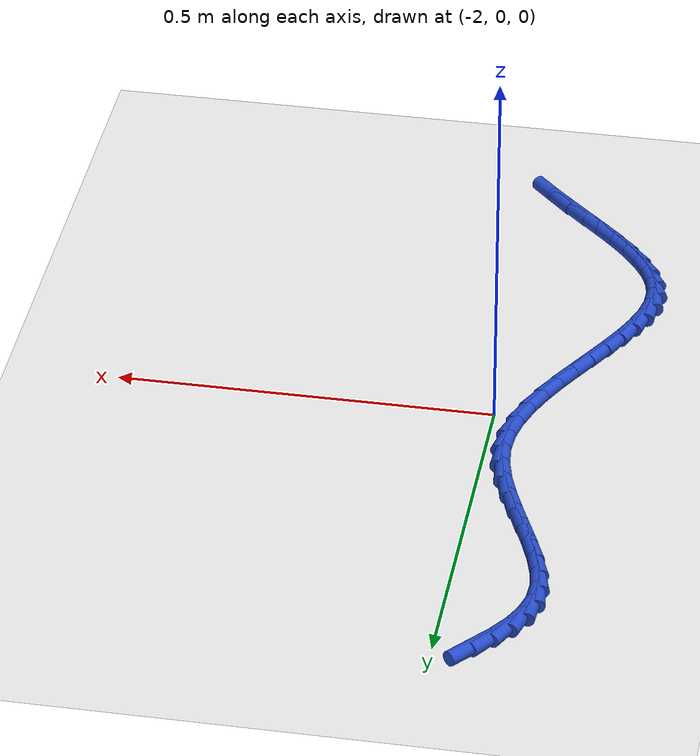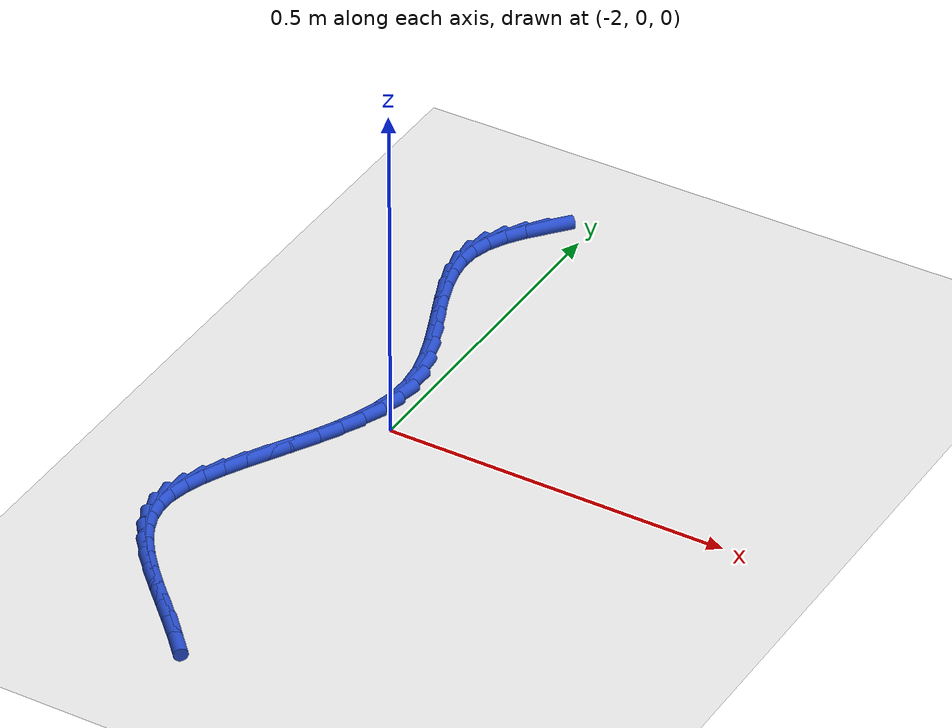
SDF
<sdf version="1.6">
 <world name="default">
  <model name="ground_plane">
   <static>1</static>
   <link name="link">
    <collision name="collision">
     <geometry><plane><normal>0 0 1</normal><size>100 100</size></plane></geometry>
     <surface><friction><ode><mu>100</mu><mu2>50</mu2></ode></friction></surface>
    </collision>
    <visual name="visual">
     <cast_shadows>0</cast_shadows>
     <geometry><plane><normal>0 0 1</normal><size>100 100</size></plane></geometry>
     <material>
      <script><uri>file://media/materials/scripts/gazebo.material</uri><name>Gazebo/WhiteGlow</name></script>
     </material>
    </visual>
   </link>
  </model>
  <model name="line">
   <link name="link_93">
    <pose>-2.050418670380692 0.49823127680128076 0.01 0 1.57 0.8731347082466545</pose>
    <collision name="collision">
     <geometry><cylinder><radius>0.01</radius><length>0.08</length></cylinder></geometry>
    </collision>
    <visual name="visual">
     <material>
      <script><name>Gazebo/Blue</name><uri>file://media/materials/scripts/gazebo.material</uri></script>
     </material>
     <geometry><cylinder><radius>0.01</radius><length>0.08</length></cylinder></geometry>
    </visual>
   </link>
   <link name="link_94">
    <pose>-2.0711060955214826 0.47355341368813614 0.01 0 1.57 0.96849518803216</pose>
    <collision name="collision">
     <geometry><cylinder><radius>0.01</radius><length>0.08</length></cylinder></geometry>
    </collision>
    <visual name="visual">
     <material>
      <script><name>Gazebo/Blue</name><uri>file://media/materials/scripts/gazebo.material</uri></script>
     </material>
     <geometry><cylinder><radius>0.01</radius><length>0.08</length></cylinder></geometry>
    </visual>
   </link>
   <link name="link_95">
    <pose>-2.0883749413973955 0.4484358345058191 0.01 0 1.57 1.107526447851891</pose>
    <collision name="collision">
     <geometry><cylinder><radius>0.01</radius><length>0.08</length></cylinder></geometry>
    </collision>
    <visual name="visual">
     <material>
      <script><name>Gazebo/Blue</name><uri>file://media/materials/scripts/gazebo.material</uri></script>
     </material>
     <geometry><cylinder><radius>0.01</radius><length>0.08</length></cylinder></geometry>
    </visual>
   </link>
   <link name="link_96">
    <pose>-2.1012575409400363 0.42264628629924034 0.01 0 1.57 1.2958977966917233</pose>
    <collision name="collision">
     <geometry><cylinder><radius>0.01</radius><length>0.08</length></cylinder></geometry>
    </collision>
    <visual name="visual">
     <material>
      <script><name>Gazebo/Blue</name><uri>file://media/materials/scripts/gazebo.material</uri></script>
     </material>
     <geometry><cylinder><radius>0.01</radius><length>0.08</length></cylinder></geometry>
    </visual>
   </link>
   <link name="link_97">
    <pose>-2.1087862270810147 0.3959525161133105 0.01 0 1.57 1.5190087882767886</pose>
    <collision name="collision">
     <geometry><cylinder><radius>0.01</radius><length>0.08</length></cylinder></geometry>
    </collision>
    <visual name="visual">
     <material>
      <script><name>Gazebo/Blue</name><uri>file://media/materials/scripts/gazebo.material</uri></script>
     </material>
     <geometry><cylinder><radius>0.01</radius><length>0.08</length></cylinder></geometry>
    </visual>
   </link>
   <link name="link_98">
    <pose>-2.110226767464913 0.368161036230665 0.01 0 1.57 -1.4340922451783673</pose>
    <collision name="collision">
     <geometry><cylinder><radius>0.01</radius><length>0.08</length></cylinder></geometry>
    </collision>
    <visual name="visual">
     <material>
      <script><name>Gazebo/Blue</name><uri>file://media/materials/scripts/gazebo.material</uri></script>
     </material>
     <geometry><cylinder><radius>0.01</radius><length>0.08</length></cylinder></geometry>
    </visual>
   </link>
   <link name="link_99">
    <pose>-2.1062583833334694 0.339313083512858 0.01 0 1.57 -1.3030346299098223</pose>
    <collision name="collision">
     <geometry><cylinder><radius>0.01</radius><length>0.08</length></cylinder></geometry>
    </collision>
    <visual name="visual">
     <material>
      <script><name>Gazebo/Blue</name><uri>file://media/materials/scripts/gazebo.material</uri></script>
     </material>
     <geometry><cylinder><radius>0.01</radius><length>0.08</length></cylinder></geometry>
    </visual>
   </link>
   <link name="link_100">
    <pose>-2.0980895331098566 0.3095377823720549 0.01 0 1.57 -1.2208027095518887</pose>
    <collision name="collision">
     <geometry><cylinder><radius>0.01</radius><length>0.08</length></cylinder></geometry>
    </collision>
    <visual name="visual">
     <material>
      <script><name>Gazebo/Blue</name><uri>file://media/materials/scripts/gazebo.material</uri></script>
     </material>
     <geometry><cylinder><radius>0.01</radius><length>0.08</length></cylinder></geometry>
    </visual>
   </link>
   <link name="link_101">
    <pose>-2.0869296026024 0.2789644112262498 0.01 0 1.57 -1.1780781902165296</pose>
    <collision name="collision">
     <geometry><cylinder><radius>0.01</radius><length>0.08</length></cylinder></geometry>
    </collision>
    <visual name="visual">
     <material>
      <script><name>Gazebo/Blue</name><uri>file://media/materials/scripts/gazebo.material</uri></script>
     </material>
     <geometry><cylinder><radius>0.01</radius><length>0.08</length></cylinder></geometry>
    </visual>
   </link>
   <link name="link_102">
    <pose>-2.0739879776194274 0.2477222484934353 0.01 0 1.57 -1.168746562117629</pose>
    <collision name="collision">
     <geometry><cylinder><radius>0.01</radius><length>0.08</length></cylinder></geometry>
    </collision>
    <visual name="visual">
     <material>
      <script><name>Gazebo/Blue</name><uri>file://media/materials/scripts/gazebo.material</uri></script>
     </material>
     <geometry><cylinder><radius>0.01</radius><length>0.08</length></cylinder></geometry>
    </visual>
   </link>
   <link name="link_103">
    <pose>-2.060474043969266 0.2159405725916053 0.01 0 1.57 -1.1902874793737874</pose>
    <collision name="collision">
     <geometry><cylinder><radius>0.01</radius><length>0.08</length></cylinder></geometry>
    </collision>
    <visual name="visual">
     <material>
      <script><name>Gazebo/Blue</name><uri>file://media/materials/scripts/gazebo.material</uri></script>
     </material>
     <geometry><cylinder><radius>0.01</radius><length>0.08</length></cylinder></geometry>
    </visual>
   </link>
   <link name="link_104">
    <pose>-2.047597187460242 0.1837486619387524 0.01 0 1.57 -1.2433444102418778</pose>
    <collision name="collision">
     <geometry><cylinder><radius>0.01</radius><length>0.08</length></cylinder></geometry>
    </collision>
    <visual name="visual">
     <material>
      <script><name>Gazebo/Blue</name><uri>file://media/materials/scripts/gazebo.material</uri></script>
     </material>
     <geometry><cylinder><radius>0.01</radius><length>0.08</length></cylinder></geometry>
    </visual>
   </link>
   <link name="link_105">
    <pose>-2.036566793900685 0.15127579495287077 0.01 0 1.57 -1.3310631662383663</pose>
    <collision name="collision">
     <geometry><cylinder><radius>0.01</radius><length>0.08</length></cylinder></geometry>
    </collision>
    <visual name="visual">
     <material>
      <script><name>Gazebo/Blue</name><uri>file://media/materials/scripts/gazebo.material</uri></script>
     </material>
     <geometry><cylinder><radius>0.01</radius><length>0.08</length></cylinder></geometry>
    </visual>
   </link>
   <link name="link_106">
    <pose>-2.02859224909892 0.11865125005195287 0.01 0 1.57 -1.4576625764159616</pose>
    <collision name="collision">
     <geometry><cylinder><radius>0.01</radius><length>0.08</length></cylinder></geometry>
    </collision>
    <visual name="visual">
     <material>
      <script><name>Gazebo/Blue</name><uri>file://media/materials/scripts/gazebo.material</uri></script>
     </material>
     <geometry><cylinder><radius>0.01</radius><length>0.08</length></cylinder></geometry>
    </visual>
   </link>
   <link name="link_107">
    <pose>-2.024882938863274 0.08600430565399271 0.01 0 1.57 1.5222918589856016</pose>
    <collision name="collision">
     <geometry><cylinder><radius>0.01</radius><length>0.08</length></cylinder></geometry>
    </collision>
    <visual name="visual">
     <material>
      <script><name>Gazebo/Blue</name><uri>file://media/materials/scripts/gazebo.material</uri></script>
     </material>
     <geometry><cylinder><radius>0.01</radius><length>0.08</length></cylinder></geometry>
    </visual>
   </link>
   <link name="link_108">
    <pose>-2.0264627856031496 0.05345869373260314 0.01 0 1.57 1.3711737944350932</pose>
    <collision name="collision">
     <geometry><cylinder><radius>0.01</radius><length>0.08</length></cylinder></geometry>
    </collision>
    <visual name="visual">
     <material>
      <script><name>Gazebo/Blue</name><uri>file://media/materials/scripts/gazebo.material</uri></script>
     </material>
     <geometry><cylinder><radius>0.01</radius><length>0.08</length></cylinder></geometry>
    </visual>
   </link>
   <link name="link_109">
    <pose>-2.033009927252839 0.02109789940524489 0.01 0 1.57 1.2519752011038614</pose>
    <collision name="collision">
     <geometry><cylinder><radius>0.01</radius><length>0.08</length></cylinder></geometry>
    </collision>
    <visual name="visual">
     <material>
      <script><name>Gazebo/Blue</name><uri>file://media/materials/scripts/gazebo.material</uri></script>
     </material>
     <geometry><cylinder><radius>0.01</radius><length>0.08</length></cylinder></geometry>
    </visual>
   </link>
   <link name="link_110">
    <pose>-2.043608926944294 -0.011012343581758451 0.01 0 1.57 1.163069969662148</pose>
    <collision name="collision">
     <geometry><cylinder><radius>0.01</radius><length>0.08</length></cylinder></geometry>
    </collision>
    <visual name="visual">
     <material>
      <script><name>Gazebo/Blue</name><uri>file://media/materials/scripts/gazebo.material</uri></script>
     </material>
     <geometry><cylinder><radius>0.01</radius><length>0.08</length></cylinder></geometry>
    </visual>
   </link>
   <link name="link_111">
    <pose>-2.0573417478094895 -0.04280637923734429 0.01 0 1.57 1.1009913772352793</pose>
    <collision name="collision">
     <geometry><cylinder><radius>0.01</radius><length>0.08</length></cylinder></geometry>
    </collision>
    <visual name="visual">
     <material>
      <script><name>Gazebo/Blue</name><uri>file://media/materials/scripts/gazebo.material</uri></script>
     </material>
     <geometry><cylinder><radius>0.01</radius><length>0.08</length></cylinder></geometry>
    </visual>
   </link>
   <link name="link_112">
    <pose>-2.073290352980397 -0.07421855157045115 0.01 0 1.57 1.0626183663803797</pose>
    <collision name="collision">
     <geometry><cylinder><radius>0.01</radius><length>0.08</length></cylinder></geometry>
    </collision>
    <visual name="visual">
     <material>
      <script><name>Gazebo/Blue</name><uri>file://media/materials/scripts/gazebo.material</uri></script>
     </material>
     <geometry><cylinder><radius>0.01</radius><length>0.08</length></cylinder></geometry>
    </visual>
   </link>
   <link name="link_113">
    <pose>-2.09053670558899 -0.10518320459001722 0.01 0 1.57 1.046092539245838</pose>
    <collision name="collision">
     <geometry><cylinder><radius>0.01</radius><length>0.08</length></cylinder></geometry>
    </collision>
    <visual name="visual">
     <material>
      <script><name>Gazebo/Blue</name><uri>file://media/materials/scripts/gazebo.material</uri></script>
     </material>
     <geometry><cylinder><radius>0.01</radius><length>0.08</length></cylinder></geometry>
    </visual>
   </link>
   <link name="link_114">
    <pose>-2.108162768767243 -0.13563468230498135 0.01 0 1.57 1.0512048412920691</pose>
    <collision name="collision">
     <geometry><cylinder><radius>0.01</radius><length>0.08</length></cylinder></geometry>
    </collision>
    <visual name="visual">
     <material>
      <script><name>Gazebo/Blue</name><uri>file://media/materials/scripts/gazebo.material</uri></script>
     </material>
     <geometry><cylinder><radius>0.01</radius><length>0.08</length></cylinder></geometry>
    </visual>
   </link>
   <link name="link_115">
    <pose>-2.1252505056471267 -0.1655073287242803 0.01 0 1.57 1.0796937248524041</pose>
    <collision name="collision">
     <geometry><cylinder><radius>0.01</radius><length>0.08</length></cylinder></geometry>
    </collision>
    <visual name="visual">
     <material>
      <script><name>Gazebo/Blue</name><uri>file://media/materials/scripts/gazebo.material</uri></script>
     </material>
     <geometry><cylinder><radius>0.01</radius><length>0.08</length></cylinder></geometry>
    </visual>
   </link>
   <link name="link_116">
    <pose>-2.1408818793606152 -0.19473548785685285 0.01 0 1.57 1.1356512090415427</pose>
    <collision name="collision">
     <geometry><cylinder><radius>0.01</radius><length>0.08</length></cylinder></geometry>
    </collision>
    <visual name="visual">
     <material>
      <script><name>Gazebo/Blue</name><uri>file://media/materials/scripts/gazebo.material</uri></script>
     </material>
     <geometry><cylinder><radius>0.01</radius><length>0.08</length></cylinder></geometry>
    </visual>
   </link>
   <link name="link_117">
    <pose>-2.154138853039682 -0.2232535037116373 0.01 0 1.57 1.2259640653423893</pose>
    <collision name="collision">
     <geometry><cylinder><radius>0.01</radius><length>0.08</length></cylinder></geometry>
    </collision>
    <visual name="visual">
     <material>
      <script><name>Gazebo/Blue</name><uri>file://media/materials/scripts/gazebo.material</uri></script>
     </material>
     <geometry><cylinder><radius>0.01</radius><length>0.08</length></cylinder></geometry>
    </visual>
   </link>
   <link name="link_118">
    <pose>-2.1641033898163005 -0.25099572029757244 0.01 0 1.57 1.3600721530264395</pose>
    <collision name="collision">
     <geometry><cylinder><radius>0.01</radius><length>0.08</length></cylinder></geometry>
    </collision>
    <visual name="visual">
     <material>
      <script><name>Gazebo/Blue</name><uri>file://media/materials/scripts/gazebo.material</uri></script>
     </material>
     <geometry><cylinder><radius>0.01</radius><length>0.08</length></cylinder></geometry>
    </visual>
   </link>
   <link name="link_119">
    <pose>-2.1698574528224426 -0.27789648162359504 0.01 0 1.57 1.5466229201425719</pose>
    <collision name="collision">
     <geometry><cylinder><radius>0.01</radius><length>0.08</length></cylinder></geometry>
    </collision>
    <visual name="visual">
     <material>
      <script><name>Gazebo/Blue</name><uri>file://media/materials/scripts/gazebo.material</uri></script>
     </material>
     <geometry><cylinder><radius>0.01</radius><length>0.08</length></cylinder></geometry>
    </visual>
   </link>
   <link name="link_120">
    <pose>-2.1704859425808274 -0.3038906388630332 0.01 0 1.57 -1.376781569934453</pose>
    <collision name="collision">
     <geometry><cylinder><radius>0.01</radius><length>0.08</length></cylinder></geometry>
    </collision>
    <visual name="visual">
     <material>
      <script><name>Gazebo/Blue</name><uri>file://media/materials/scripts/gazebo.material</uri></script>
     </material>
     <geometry><cylinder><radius>0.01</radius><length>0.08</length></cylinder></geometry>
    </visual>
   </link>
   <link name="link_121">
    <pose>-2.165553119972541 -0.328995808651647 0.01 0 1.57 -1.1846379040771136</pose>
    <collision name="collision">
     <geometry><cylinder><radius>0.01</radius><length>0.08</length></cylinder></geometry>
    </collision>
    <visual name="visual">
     <material>
      <script><name>Gazebo/Blue</name><uri>file://media/materials/scripts/gazebo.material</uri></script>
     </material>
     <geometry><cylinder><radius>0.01</radius><length>0.08</length></cylinder></geometry>
    </visual>
   </link>
   <link name="link_122">
    <pose>-2.1556297018030257 -0.35340338042168173 0.01 0 1.57 -1.0346162317847634</pose>
    <collision name="collision">
     <geometry><cylinder><radius>0.01</radius><length>0.08</length></cylinder></geometry>
    </collision>
    <visual name="visual">
     <material>
      <script><name>Gazebo/Blue</name><uri>file://media/materials/scripts/gazebo.material</uri></script>
     </material>
     <geometry><cylinder><radius>0.01</radius><length>0.08</length></cylinder></geometry>
    </visual>
   </link>
   <link name="link_123">
    <pose>-2.1414133189374147 -0.37732665634942825 0.01 0 1.57 -0.925336212008757</pose>
    <collision name="collision">
     <geometry><cylinder><radius>0.01</radius><length>0.08</length></cylinder></geometry>
    </collision>
    <visual name="visual">
     <material>
      <script><name>Gazebo/Blue</name><uri>file://media/materials/scripts/gazebo.material</uri></script>
     </material>
     <geometry><cylinder><radius>0.01</radius><length>0.08</length></cylinder></geometry>
    </visual>
   </link>
   <link name="link_124">
    <pose>-2.123601602240841 -0.4009789386111796 0.01 0 1.57 -0.8504284589193222</pose>
    <collision name="collision">
     <geometry><cylinder><radius>0.01</radius><length>0.08</length></cylinder></geometry>
    </collision>
    <visual name="visual">
     <material>
      <script><name>Gazebo/Blue</name><uri>file://media/materials/scripts/gazebo.material</uri></script>
     </material>
     <geometry><cylinder><radius>0.01</radius><length>0.08</length></cylinder></geometry>
    </visual>
   </link>
   <link name="link_125">
    <pose>-2.1028921825784366 -0.4245735293832278 0.01 0 1.57 -0.8034141141653995</pose>
    <collision name="collision">
     <geometry><cylinder><radius>0.01</radius><length>0.08</length></cylinder></geometry>
    </collision>
    <visual name="visual">
     <material>
      <script><name>Gazebo/Blue</name><uri>file://media/materials/scripts/gazebo.material</uri></script>
     </material>
     <geometry><cylinder><radius>0.01</radius><length>0.08</length></cylinder></geometry>
    </visual>
   </link>
   <link name="link_126">
    <pose>-2.0799826908153354 -0.4483237308418658 0.01 0 1.57 -0.779364600553422</pose>
    <collision name="collision">
     <geometry><cylinder><radius>0.01</radius><length>0.08</length></cylinder></geometry>
    </collision>
    <visual name="visual">
     <material>
      <script><name>Gazebo/Blue</name><uri>file://media/materials/scripts/gazebo.material</uri></script>
     </material>
     <geometry><cylinder><radius>0.01</radius><length>0.08</length></cylinder></geometry>
    </visual>
   </link>
   <link name="link_127">
    <pose>-2.0555707578166698 -0.47244284516338464 0.01 0 1.57 -0.7750733318215688</pose>
    <collision name="collision">
     <geometry><cylinder><radius>0.01</radius><length>0.08</length></cylinder></geometry>
    </collision>
    <visual name="visual">
     <material>
      <script><name>Gazebo/Blue</name><uri>file://media/materials/scripts/gazebo.material</uri></script>
     </material>
     <geometry><cylinder><radius>0.01</radius><length>0.08</length></cylinder></geometry>
    </visual>
   </link>
   <link name="link_128">
    <pose>-2.030354014447573 -0.4971441745240771 0.01 0 1.57 -0.7888007689911224</pose>
    <collision name="collision">
     <geometry><cylinder><radius>0.01</radius><length>0.08</length></cylinder></geometry>
    </collision>
    <visual name="visual">
     <material>
      <script><name>Gazebo/Blue</name><uri>file://media/materials/scripts/gazebo.material</uri></script>
     </material>
     <geometry><cylinder><radius>0.01</radius><length>0.08</length></cylinder></geometry>
    </visual>
   </link>
   <link name="link_129">
    <pose>-2.0050300915731767 -0.5226410211002355 0.01 0 1.57 -0.8199711165972962</pose>
    <collision name="collision">
     <geometry><cylinder><radius>0.01</radius><length>0.08</length></cylinder></geometry>
    </collision>
    <visual name="visual">
     <material>
      <script><name>Gazebo/Blue</name><uri>file://media/materials/scripts/gazebo.material</uri></script>
     </material>
     <geometry><cylinder><radius>0.01</radius><length>0.08</length></cylinder></geometry>
    </visual>
   </link>
  </model>
 </world>
</sdf>
